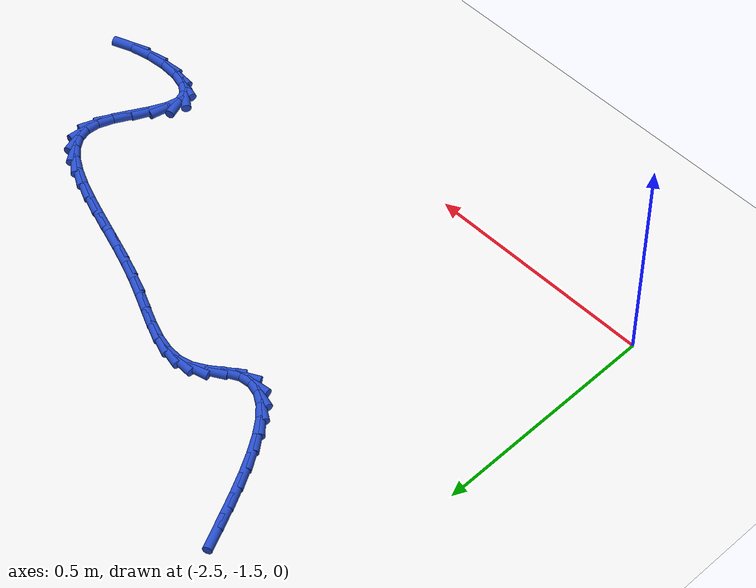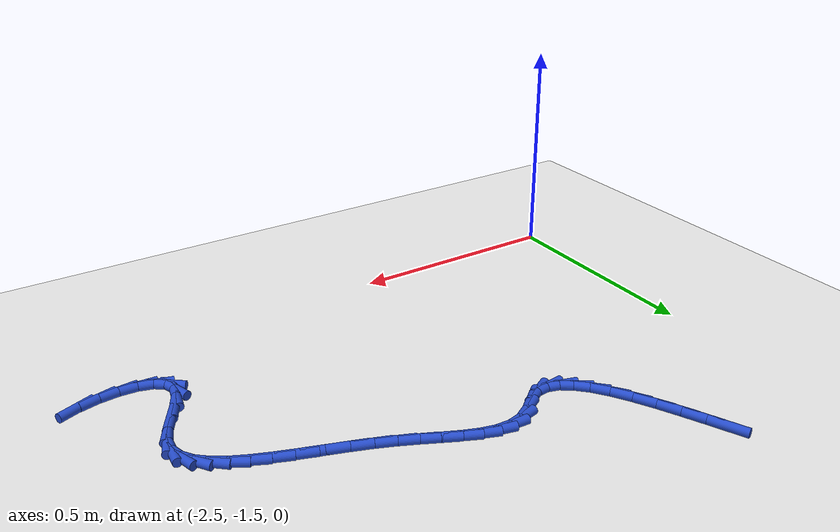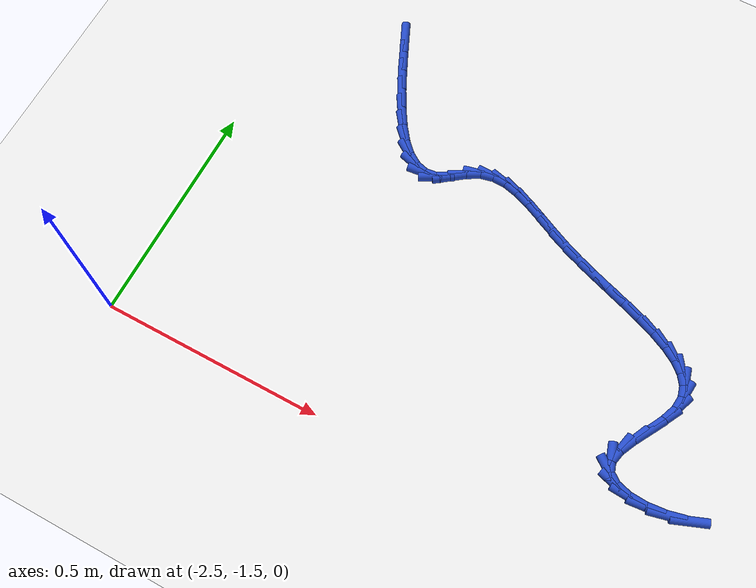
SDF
<sdf version="1.6">
 <world name="default">
  <model name="ground_plane">
   <static>1</static>
   <link name="link">
    <collision name="collision">
     <geometry><plane><normal>0 0 1</normal><size>100 100</size></plane></geometry>
     <surface><friction><ode><mu>100</mu><mu2>50</mu2></ode></friction></surface>
    </collision>
    <visual name="visual">
     <cast_shadows>0</cast_shadows>
     <geometry><plane><normal>0 0 1</normal><size>100 100</size></plane></geometry>
     <material>
      <script><uri>file://media/materials/scripts/gazebo.material</uri><name>Gazebo/WhiteGlow</name></script>
     </material>
    </visual>
   </link>
  </model>
  <model name="line">
   <link name="link_154">
    <pose>-2.2603594501851845 -0.6295988394355533 0.01 0 1.57 -1.144999284777677</pose>
    <collision name="collision">
     <geometry><cylinder><radius>0.01</radius><length>0.08</length></cylinder></geometry>
    </collision>
    <visual name="visual">
     <material>
      <script><name>Gazebo/Blue</name><uri>file://media/materials/scripts/gazebo.material</uri></script>
     </material>
     <geometry><cylinder><radius>0.01</radius><length>0.08</length></cylinder></geometry>
    </visual>
   </link>
   <link name="link_155">
    <pose>-2.2403257408986605 -0.6737703378981995 0.01 0 1.57 -1.133528455810359</pose>
    <collision name="collision">
     <geometry><cylinder><radius>0.01</radius><length>0.08</length></cylinder></geometry>
    </collision>
    <visual name="visual">
     <material>
      <script><name>Gazebo/Blue</name><uri>file://media/materials/scripts/gazebo.material</uri></script>
     </material>
     <geometry><cylinder><radius>0.01</radius><length>0.08</length></cylinder></geometry>
    </visual>
   </link>
   <link name="link_156">
    <pose>-2.219812968024007 -0.7176528883419406 0.01 0 1.57 -1.1097474663781208</pose>
    <collision name="collision">
     <geometry><cylinder><radius>0.01</radius><length>0.08</length></cylinder></geometry>
    </collision>
    <visual name="visual">
     <material>
      <script><name>Gazebo/Blue</name><uri>file://media/materials/scripts/gazebo.material</uri></script>
     </material>
     <geometry><cylinder><radius>0.01</radius><length>0.08</length></cylinder></geometry>
    </visual>
   </link>
   <link name="link_157">
    <pose>-2.198772100159578 -0.760009452738553 0.01 0 1.57 -1.0710308469252088</pose>
    <collision name="collision">
     <geometry><cylinder><radius>0.01</radius><length>0.08</length></cylinder></geometry>
    </collision>
    <visual name="visual">
     <material>
      <script><name>Gazebo/Blue</name><uri>file://media/materials/scripts/gazebo.material</uri></script>
     </material>
     <geometry><cylinder><radius>0.01</radius><length>0.08</length></cylinder></geometry>
    </visual>
   </link>
   <link name="link_158">
    <pose>-2.1771541058695547 -0.7996029926707885 0.01 0 1.57 -1.0122327921732608</pose>
    <collision name="collision">
     <geometry><cylinder><radius>0.01</radius><length>0.08</length></cylinder></geometry>
    </collision>
    <visual name="visual">
     <material>
      <script><name>Gazebo/Blue</name><uri>file://media/materials/scripts/gazebo.material</uri></script>
     </material>
     <geometry><cylinder><radius>0.01</radius><length>0.08</length></cylinder></geometry>
    </visual>
   </link>
   <link name="link_159">
    <pose>-2.1549099537181187 -0.8351964697213976 0.01 0 1.57 -0.9240970626502654</pose>
    <collision name="collision">
     <geometry><cylinder><radius>0.01</radius><length>0.08</length></cylinder></geometry>
    </collision>
    <visual name="visual">
     <material>
      <script><name>Gazebo/Blue</name><uri>file://media/materials/scripts/gazebo.material</uri></script>
     </material>
     <geometry><cylinder><radius>0.01</radius><length>0.08</length></cylinder></geometry>
    </visual>
   </link>
   <link name="link_160">
    <pose>-2.131990612269451 -0.8655528454731305 0.01 0 1.57 -0.7904201063504451</pose>
    <collision name="collision">
     <geometry><cylinder><radius>0.01</radius><length>0.08</length></cylinder></geometry>
    </collision>
    <visual name="visual">
     <material>
      <script><name>Gazebo/Blue</name><uri>file://media/materials/scripts/gazebo.material</uri></script>
     </material>
     <geometry><cylinder><radius>0.01</radius><length>0.08</length></cylinder></geometry>
    </visual>
   </link>
   <link name="link_161">
    <pose>-2.1083470500877346 -0.889435081508738 0.01 0 1.57 -0.584967787324417</pose>
    <collision name="collision">
     <geometry><cylinder><radius>0.01</radius><length>0.08</length></cylinder></geometry>
    </collision>
    <visual name="visual">
     <material>
      <script><name>Gazebo/Blue</name><uri>file://media/materials/scripts/gazebo.material</uri></script>
     </material>
     <geometry><cylinder><radius>0.01</radius><length>0.08</length></cylinder></geometry>
    </visual>
   </link>
   <link name="link_162">
    <pose>-2.08393023573715 -0.9056061394109711 0.01 0 1.57 -0.2787271067642206</pose>
    <collision name="collision">
     <geometry><cylinder><radius>0.01</radius><length>0.08</length></cylinder></geometry>
    </collision>
    <visual name="visual">
     <material>
      <script><name>Gazebo/Blue</name><uri>file://media/materials/scripts/gazebo.material</uri></script>
     </material>
     <geometry><cylinder><radius>0.01</radius><length>0.08</length></cylinder></geometry>
    </visual>
   </link>
   <link name="link_163">
    <pose>-2.0586911377818784 -0.9128289807625796 0.01 0 1.57 0.11297407076643015</pose>
    <collision name="collision">
     <geometry><cylinder><radius>0.01</radius><length>0.08</length></cylinder></geometry>
    </collision>
    <visual name="visual">
     <material>
      <script><name>Gazebo/Blue</name><uri>file://media/materials/scripts/gazebo.material</uri></script>
     </material>
     <geometry><cylinder><radius>0.01</radius><length>0.08</length></cylinder></geometry>
    </visual>
   </link>
   <link name="link_164">
    <pose>-2.032580724786102 -0.9098665671463144 0.01 0 1.57 0.48595080194998025</pose>
    <collision name="collision">
     <geometry><cylinder><radius>0.01</radius><length>0.08</length></cylinder></geometry>
    </collision>
    <visual name="visual">
     <material>
      <script><name>Gazebo/Blue</name><uri>file://media/materials/scripts/gazebo.material</uri></script>
     </material>
     <geometry><cylinder><radius>0.01</radius><length>0.08</length></cylinder></geometry>
    </visual>
   </link>
   <link name="link_165">
    <pose>-2.005551475548038 -0.8955897684877833 0.01 0 1.57 0.6500628638889095</pose>
    <collision name="collision">
     <geometry><cylinder><radius>0.01</radius><length>0.08</length></cylinder></geometry>
    </collision>
    <visual name="visual">
     <material>
      <script><name>Gazebo/Blue</name><uri>file://media/materials/scripts/gazebo.material</uri></script>
     </material>
     <geometry><cylinder><radius>0.01</radius><length>0.08</length></cylinder></geometry>
    </visual>
   </link>
   <link name="link_166">
    <pose>-1.977632754828094 -0.8743630646873934 0.01 0 1.57 0.5177614833914408</pose>
    <collision name="collision">
     <geometry><cylinder><radius>0.01</radius><length>0.08</length></cylinder></geometry>
    </collision>
    <visual name="visual">
     <material>
      <script><name>Gazebo/Blue</name><uri>file://media/materials/scripts/gazebo.material</uri></script>
     </material>
     <geometry><cylinder><radius>0.01</radius><length>0.08</length></cylinder></geometry>
    </visual>
   </link>
   <link name="link_167">
    <pose>-1.9489525079139551 -0.8580269891444743 0.01 0 1.57 0.2267055342881103</pose>
    <collision name="collision">
     <geometry><cylinder><radius>0.01</radius><length>0.08</length></cylinder></geometry>
    </collision>
    <visual name="visual">
     <material>
      <script><name>Gazebo/Blue</name><uri>file://media/materials/scripts/gazebo.material</uri></script>
     </material>
     <geometry><cylinder><radius>0.01</radius><length>0.08</length></cylinder></geometry>
    </visual>
   </link>
   <link name="link_168">
    <pose>-1.9194464775147537 -0.8512208050890147 0.01 0 1.57 -0.04237764340508209</pose>
    <collision name="collision">
     <geometry><cylinder><radius>0.01</radius><length>0.08</length></cylinder></geometry>
    </collision>
    <visual name="visual">
     <material>
      <script><name>Gazebo/Blue</name><uri>file://media/materials/scripts/gazebo.material</uri></script>
     </material>
     <geometry><cylinder><radius>0.01</radius><length>0.08</length></cylinder></geometry>
    </visual>
   </link>
   <link name="link_169">
    <pose>-1.8888946632073007 -0.85251629458191 0.01 0 1.57 -0.2406913152131738</pose>
    <collision name="collision">
     <geometry><cylinder><radius>0.01</radius><length>0.08</length></cylinder></geometry>
    </collision>
    <visual name="visual">
     <material>
      <script><name>Gazebo/Blue</name><uri>file://media/materials/scripts/gazebo.material</uri></script>
     </material>
     <geometry><cylinder><radius>0.01</radius><length>0.08</length></cylinder></geometry>
    </visual>
   </link>
   <link name="link_170">
    <pose>-1.8570730004099956 -0.8603269071510296 0.01 0 1.57 -0.36522440958192337</pose>
    <collision name="collision">
     <geometry><cylinder><radius>0.01</radius><length>0.08</length></cylinder></geometry>
    </collision>
    <visual name="visual">
     <material>
      <script><name>Gazebo/Blue</name><uri>file://media/materials/scripts/gazebo.material</uri></script>
     </material>
     <geometry><cylinder><radius>0.01</radius><length>0.08</length></cylinder></geometry>
    </visual>
   </link>
   <link name="link_171">
    <pose>-1.8237574245412365 -0.8730660923242421 0.01 0 1.57 -0.43033208094320785</pose>
    <collision name="collision">
     <geometry><cylinder><radius>0.01</radius><length>0.08</length></cylinder></geometry>
    </collision>
    <visual name="visual">
     <material>
      <script><name>Gazebo/Blue</name><uri>file://media/materials/scripts/gazebo.material</uri></script>
     </material>
     <geometry><cylinder><radius>0.01</radius><length>0.08</length></cylinder></geometry>
    </visual>
   </link>
   <link name="link_172">
    <pose>-1.7887238710194207 -0.8891472996294172 0.01 0 1.57 -0.4494610889643185</pose>
    <collision name="collision">
     <geometry><cylinder><radius>0.01</radius><length>0.08</length></cylinder></geometry>
    </collision>
    <visual name="visual">
     <material>
      <script><name>Gazebo/Blue</name><uri>file://media/materials/scripts/gazebo.material</uri></script>
     </material>
     <geometry><cylinder><radius>0.01</radius><length>0.08</length></cylinder></geometry>
    </visual>
   </link>
   <link name="link_173">
    <pose>-1.7517482752629494 -0.9069839785944233 0.01 0 1.57 -0.431147533034919</pose>
    <collision name="collision">
     <geometry><cylinder><radius>0.01</radius><length>0.08</length></cylinder></geometry>
    </collision>
    <visual name="visual">
     <material>
      <script><name>Gazebo/Blue</name><uri>file://media/materials/scripts/gazebo.material</uri></script>
     </material>
     <geometry><cylinder><radius>0.01</radius><length>0.08</length></cylinder></geometry>
    </visual>
   </link>
   <link name="link_174">
    <pose>-1.7126065726902195 -0.9249895787471294 0.01 0 1.57 -0.385651157227806</pose>
    <collision name="collision">
     <geometry><cylinder><radius>0.01</radius><length>0.08</length></cylinder></geometry>
    </collision>
    <visual name="visual">
     <material>
      <script><name>Gazebo/Blue</name><uri>file://media/materials/scripts/gazebo.material</uri></script>
     </material>
     <geometry><cylinder><radius>0.01</radius><length>0.08</length></cylinder></geometry>
    </visual>
   </link>
   <link name="link_175">
    <pose>-1.6712144690443527 -0.9417939575949157 0.01 0 1.57 -0.3481630101726275</pose>
    <collision name="collision">
     <geometry><cylinder><radius>0.01</radius><length>0.08</length></cylinder></geometry>
    </collision>
    <visual name="visual">
     <material>
      <script><name>Gazebo/Blue</name><uri>file://media/materials/scripts/gazebo.material</uri></script>
     </material>
     <geometry><cylinder><radius>0.01</radius><length>0.08</length></cylinder></geometry>
    </visual>
   </link>
   <link name="link_176">
    <pose>-1.6283444583481868 -0.957353547659208 0.01 0 1.57 -0.3291540166167353</pose>
    <collision name="collision">
     <geometry><cylinder><radius>0.01</radius><length>0.08</length></cylinder></geometry>
    </collision>
    <visual name="visual">
     <material>
      <script><name>Gazebo/Blue</name><uri>file://media/materials/scripts/gazebo.material</uri></script>
     </material>
     <geometry><cylinder><radius>0.01</radius><length>0.08</length></cylinder></geometry>
    </visual>
   </link>
   <link name="link_177">
    <pose>-1.5850935269775794 -0.9721271966530908 0.01 0 1.57 -0.3274404803260642</pose>
    <collision name="collision">
     <geometry><cylinder><radius>0.01</radius><length>0.08</length></cylinder></geometry>
    </collision>
    <visual name="visual">
     <material>
      <script><name>Gazebo/Blue</name><uri>file://media/materials/scripts/gazebo.material</uri></script>
     </material>
     <geometry><cylinder><radius>0.01</radius><length>0.08</length></cylinder></geometry>
    </visual>
   </link>
   <link name="link_178">
    <pose>-1.5425592747702364 -0.9865747021195866 0.01 0 1.57 -0.3438581219976652</pose>
    <collision name="collision">
     <geometry><cylinder><radius>0.01</radius><length>0.08</length></cylinder></geometry>
    </collision>
    <visual name="visual">
     <material>
      <script><name>Gazebo/Blue</name><uri>file://media/materials/scripts/gazebo.material</uri></script>
     </material>
     <geometry><cylinder><radius>0.01</radius><length>0.08</length></cylinder></geometry>
    </visual>
   </link>
   <link name="link_179">
    <pose>-1.5018393015638616 -1.0011558616017169 0.01 0 1.57 -0.38167719943575673</pose>
    <collision name="collision">
     <geometry><cylinder><radius>0.01</radius><length>0.08</length></cylinder></geometry>
    </collision>
    <visual name="visual">
     <material>
      <script><name>Gazebo/Blue</name><uri>file://media/materials/scripts/gazebo.material</uri></script>
     </material>
     <geometry><cylinder><radius>0.01</radius><length>0.08</length></cylinder></geometry>
    </visual>
   </link>
   <link name="link_180">
    <pose>-1.4640312071961605 -1.0163304726425046 0.01 0 1.57 -0.44762877124879913</pose>
    <collision name="collision">
     <geometry><cylinder><radius>0.01</radius><length>0.08</length></cylinder></geometry>
    </collision>
    <visual name="visual">
     <material>
      <script><name>Gazebo/Blue</name><uri>file://media/materials/scripts/gazebo.material</uri></script>
     </material>
     <geometry><cylinder><radius>0.01</radius><length>0.08</length></cylinder></geometry>
    </visual>
   </link>
   <link name="link_181">
    <pose>-1.4302325915048368 -1.0325583327849719 0.01 0 1.57 -0.5537902560520933</pose>
    <collision name="collision">
     <geometry><cylinder><radius>0.01</radius><length>0.08</length></cylinder></geometry>
    </collision>
    <visual name="visual">
     <material>
      <script><name>Gazebo/Blue</name><uri>file://media/materials/scripts/gazebo.material</uri></script>
     </material>
     <geometry><cylinder><radius>0.01</radius><length>0.08</length></cylinder></geometry>
    </visual>
   </link>
   <link name="link_182">
    <pose>-1.4015410543275977 -1.05029923957214 0.01 0 1.57 -0.7197799976054218</pose>
    <collision name="collision">
     <geometry><cylinder><radius>0.01</radius><length>0.08</length></cylinder></geometry>
    </collision>
    <visual name="visual">
     <material>
      <script><name>Gazebo/Blue</name><uri>file://media/materials/scripts/gazebo.material</uri></script>
     </material>
     <geometry><cylinder><radius>0.01</radius><length>0.08</length></cylinder></geometry>
    </visual>
   </link>
   <link name="link_183">
    <pose>-1.3790541955021463 -1.0700129905470317 0.01 0 1.57 -0.9697691718366573</pose>
    <collision name="collision">
     <geometry><cylinder><radius>0.01</radius><length>0.08</length></cylinder></geometry>
    </collision>
    <visual name="visual">
     <material>
      <script><name>Gazebo/Blue</name><uri>file://media/materials/scripts/gazebo.material</uri></script>
     </material>
     <geometry><cylinder><radius>0.01</radius><length>0.08</length></cylinder></geometry>
    </visual>
   </link>
   <link name="link_184">
    <pose>-1.3638696148661884 -1.092159383252669 0.01 0 1.57 -1.306183214500425</pose>
    <collision name="collision">
     <geometry><cylinder><radius>0.01</radius><length>0.08</length></cylinder></geometry>
    </collision>
    <visual name="visual">
     <material>
      <script><name>Gazebo/Blue</name><uri>file://media/materials/scripts/gazebo.material</uri></script>
     </material>
     <geometry><cylinder><radius>0.01</radius><length>0.08</length></cylinder></geometry>
    </visual>
   </link>
   <link name="link_185">
    <pose>-1.3570849122574282 -1.117198215232074 0.01 0 1.57 1.4755352271257005</pose>
    <collision name="collision">
     <geometry><cylinder><radius>0.01</radius><length>0.08</length></cylinder></geometry>
    </collision>
    <visual name="visual">
     <material>
      <script><name>Gazebo/Blue</name><uri>file://media/materials/scripts/gazebo.material</uri></script>
     </material>
     <geometry><cylinder><radius>0.01</radius><length>0.08</length></cylinder></geometry>
    </visual>
   </link>
   <link name="link_186">
    <pose>-1.3597976875135704 -1.1455892840282689 0.01 0 1.57 1.1972417337573655</pose>
    <collision name="collision">
     <geometry><cylinder><radius>0.01</radius><length>0.08</length></cylinder></geometry>
    </collision>
    <visual name="visual">
     <material>
      <script><name>Gazebo/Blue</name><uri>file://media/materials/scripts/gazebo.material</uri></script>
     </material>
     <geometry><cylinder><radius>0.01</radius><length>0.08</length></cylinder></geometry>
    </visual>
   </link>
   <link name="link_187">
    <pose>-1.372291879303389 -1.1774656243373642 0.01 0 1.57 1.0707788635848257</pose>
    <collision name="collision">
     <geometry><cylinder><radius>0.01</radius><length>0.08</length></cylinder></geometry>
    </collision>
    <visual name="visual">
     <material>
      <script><name>Gazebo/Blue</name><uri>file://media/materials/scripts/gazebo.material</uri></script>
     </material>
     <geometry><cylinder><radius>0.01</radius><length>0.08</length></cylinder></geometry>
    </visual>
   </link>
   <link name="link_188">
    <pose>-1.390793091830278 -1.2113304610842057 0.01 0 1.57 1.0487925835458507</pose>
    <collision name="collision">
     <geometry><cylinder><radius>0.01</radius><length>0.08</length></cylinder></geometry>
    </collision>
    <visual name="visual">
     <material>
      <script><name>Gazebo/Blue</name><uri>file://media/materials/scripts/gazebo.material</uri></script>
     </material>
     <geometry><cylinder><radius>0.01</radius><length>0.08</length></cylinder></geometry>
    </visual>
   </link>
   <link name="link_189">
    <pose>-1.4102641478951836 -1.245179891581004 0.01 0 1.57 1.1200910695033026</pose>
    <collision name="collision">
     <geometry><cylinder><radius>0.01</radius><length>0.08</length></cylinder></geometry>
    </collision>
    <visual name="visual">
     <material>
      <script><name>Gazebo/Blue</name><uri>file://media/materials/scripts/gazebo.material</uri></script>
     </material>
     <geometry><cylinder><radius>0.01</radius><length>0.08</length></cylinder></geometry>
    </visual>
   </link>
   <link name="link_190">
    <pose>-1.42566746700694 -1.2770098511795855 0.01 0 1.57 1.3480598691492962</pose>
    <collision name="collision">
     <geometry><cylinder><radius>0.01</radius><length>0.08</length></cylinder></geometry>
    </collision>
    <visual name="visual">
     <material>
      <script><name>Gazebo/Blue</name><uri>file://media/materials/scripts/gazebo.material</uri></script>
     </material>
     <geometry><cylinder><radius>0.01</radius><length>0.08</length></cylinder></geometry>
    </visual>
   </link>
   <link name="link_191">
    <pose>-1.4319654686743846 -1.3048162752317767 0.01 0 1.57 -1.251320242064924</pose>
    <collision name="collision">
     <geometry><cylinder><radius>0.01</radius><length>0.08</length></cylinder></geometry>
    </collision>
    <visual name="visual">
     <material>
      <script><name>Gazebo/Blue</name><uri>file://media/materials/scripts/gazebo.material</uri></script>
     </material>
     <geometry><cylinder><radius>0.01</radius><length>0.08</length></cylinder></geometry>
    </visual>
   </link>
   <link name="link_192">
    <pose>-1.4247107522521485 -1.3267465647523078 0.01 0 1.57 -0.6486603279829745</pose>
    <collision name="collision">
     <geometry><cylinder><radius>0.01</radius><length>0.08</length></cylinder></geometry>
    </collision>
    <visual name="visual">
     <material>
      <script><name>Gazebo/Blue</name><uri>file://media/materials/scripts/gazebo.material</uri></script>
     </material>
     <geometry><cylinder><radius>0.01</radius><length>0.08</length></cylinder></geometry>
    </visual>
   </link>
   <link name="link_193">
    <pose>-1.4043280708390595 -1.3421985260381222 0.01 0 1.57 -0.28492708869288635</pose>
    <collision name="collision">
     <geometry><cylinder><radius>0.01</radius><length>0.08</length></cylinder></geometry>
    </collision>
    <visual name="visual">
     <material>
      <script><name>Gazebo/Blue</name><uri>file://media/materials/scripts/gazebo.material</uri></script>
     </material>
     <geometry><cylinder><radius>0.01</radius><length>0.08</length></cylinder></geometry>
    </visual>
   </link>
   <link name="link_194">
    <pose>-1.3736429156963659 -1.351186098586611 0.01 0 1.57 -0.06652703647885416</pose>
    <collision name="collision">
     <geometry><cylinder><radius>0.01</radius><length>0.08</length></cylinder></geometry>
    </collision>
    <visual name="visual">
     <material>
      <script><name>Gazebo/Blue</name><uri>file://media/materials/scripts/gazebo.material</uri></script>
     </material>
     <geometry><cylinder><radius>0.01</radius><length>0.08</length></cylinder></geometry>
    </visual>
   </link>
   <link name="link_195">
    <pose>-1.3354976146175868 -1.353727542877221 0.01 0 1.57 0.09063361403727019</pose>
    <collision name="collision">
     <geometry><cylinder><radius>0.01</radius><length>0.08</length></cylinder></geometry>
    </collision>
    <visual name="visual">
     <material>
      <script><name>Gazebo/Blue</name><uri>file://media/materials/scripts/gazebo.material</uri></script>
     </material>
     <geometry><cylinder><radius>0.01</radius><length>0.08</length></cylinder></geometry>
    </visual>
   </link>
   <link name="link_196">
    <pose>-1.292734495396241 -1.3498411193893973 0.01 0 1.57 0.2271801815725839</pose>
    <collision name="collision">
     <geometry><cylinder><radius>0.01</radius><length>0.08</length></cylinder></geometry>
    </collision>
    <visual name="visual">
     <material>
      <script><name>Gazebo/Blue</name><uri>file://media/materials/scripts/gazebo.material</uri></script>
     </material>
     <geometry><cylinder><radius>0.01</radius><length>0.08</length></cylinder></geometry>
    </visual>
   </link>
   <link name="link_197">
    <pose>-1.2481958858258468 -1.3395450886025841 0.01 0 1.57 0.36652170415527785</pose>
    <collision name="collision">
     <geometry><cylinder><radius>0.01</radius><length>0.08</length></cylinder></geometry>
    </collision>
    <visual name="visual">
     <material>
      <script><name>Gazebo/Blue</name><uri>file://media/materials/scripts/gazebo.material</uri></script>
     </material>
     <geometry><cylinder><radius>0.01</radius><length>0.08</length></cylinder></geometry>
    </visual>
   </link>
  </model>
 </world>
</sdf>
